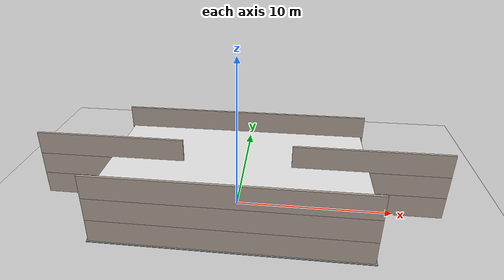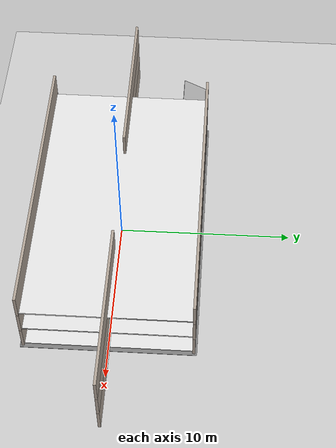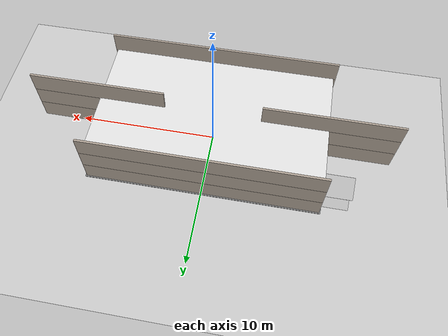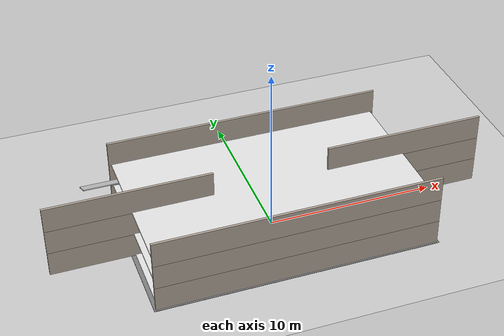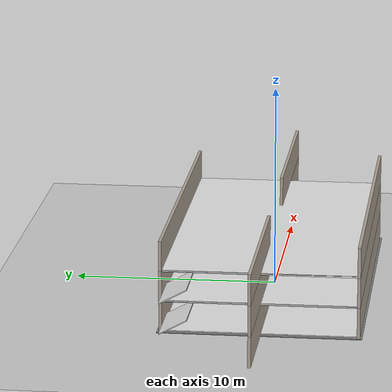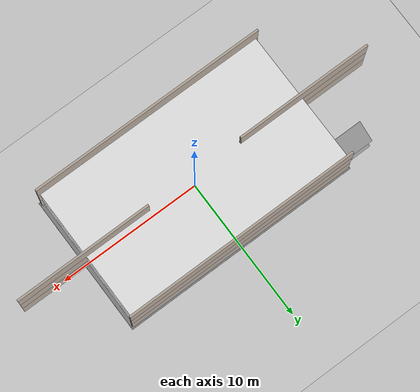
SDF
<?xml version="1.0" ?>
<sdf version="1.5">
    <world name="multi_floor_building">
        <gui fullscreen='false'>
            <camera name='user_camera'>
                <pose>15 -15 12 0 0.4 -1.5</pose>
                <view_controller>orbit</view_controller>
            </camera>
        </gui>
        <physics type="ode">
            <max_step_size>0.001</max_step_size>
            <real_time_factor>1</real_time_factor>
            <real_time_update_rate>1000</real_time_update_rate>
            <gravity>0 0 -9.81</gravity>
            <ode>
                <solver><type>quick</type><iters>50</iters><sor>1.3</sor></solver>
                <constraints><cfm>0.0</cfm><erp>0.2</erp><contact_max_correcting_vel>10.0</contact_max_correcting_vel><contact_surface_layer>0.001</contact_surface_layer></constraints>
            </ode>
        </physics>
        <scene>
            <sky><clouds><speed>12</speed></clouds></sky>
        </scene>
        <include><uri>model://sun</uri></include>
        <include><uri>model://ground_plane</uri></include>
        <include><uri>model://multi_floor_building</uri><pose>0 0 0 0 0 0</pose></include>
    </world>
</sdf>

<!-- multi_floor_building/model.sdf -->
<sdf version='1.7'>
  <model name='MultiFloorBuilding'>
    <static>true</static>
    <allow_auto_disable>1</allow_auto_disable>

    <link name='building_base'>
        <pose>0 0 -0.05 0 0 0</pose>
        <visual name='visual'>
            <geometry>
                <box>
                    <size>16.8 9.8 0.1</size>
                </box>
            </geometry>
            <material>
                <ambient>0.4 0.4 0.4 1</ambient>
                <diffuse>0.5 0.5 0.5 1</diffuse>
            </material>
        </visual>
        <collision name='collision'>
            <geometry>
                <box>
                    <size>16.8 9.8 0.1</size>
                </box>
            </geometry>
        </collision>
    </link>

        <link name='floor_f0'>
            <pose>0 0 0.0 0 0 0</pose>
            <visual name='visual'>
                <geometry>
                    <box>
                        <size>16.3 9.3 0.1</size>
                    </box>
                </geometry>
                <material>
                    <ambient>0.8 0.8 0.8 1</ambient>
                    <diffuse>0.9 0.9 0.9 1</diffuse>
                </material>
            </visual>
            <collision name='collision'>
                <geometry>
                    <box>
                        <size>16.3 9.3 0.1</size>
                    </box>
                </geometry>
                <surface>
                    <friction>
                        <ode>
                            <mu>1.0</mu>
                            <mu2>1.0</mu2>
                        </ode>
                    </friction>
                </surface>
            </collision>
        </link>

        <link name='ext_wall_f0_0'>
            <pose>0 -4.7250000000000005 0.75 0 0 0</pose>
            <visual name='visual'>
                <geometry>
                    <box>
                        <size>16.6 0.15 1.5</size>
                    </box>
                </geometry>
                <material>
                    <ambient>0.6 0.55 0.5 1</ambient>
                    <diffuse>0.7 0.65 0.6 1</diffuse>
                </material>
            </visual>
            <collision name='collision'>
                <geometry>
                    <box>
                        <size>16.6 0.15 1.5</size>
                    </box>
                </geometry>
                <surface>
                    <friction>
                        <ode>
                            <mu>0.8</mu>
                            <mu2>0.8</mu2>
                        </ode>
                    </friction>
                </surface>
            </collision>
        </link>

        <link name='ext_wall_f0_1'>
            <pose>0 4.7250000000000005 0.75 0 0 0</pose>
            <visual name='visual'>
                <geometry>
                    <box>
                        <size>16.6 0.15 1.5</size>
                    </box>
                </geometry>
                <material>
                    <ambient>0.6 0.55 0.5 1</ambient>
                    <diffuse>0.7 0.65 0.6 1</diffuse>
                </material>
            </visual>
            <collision name='collision'>
                <geometry>
                    <box>
                        <size>16.6 0.15 1.5</size>
                    </box>
                </geometry>
                <surface>
                    <friction>
                        <ode>
                            <mu>0.8</mu>
                            <mu2>0.8</mu2>
                        </ode>
                    </friction>
                </surface>
            </collision>
        </link>

        <link name='ext_wall_f0_2'>
            <pose>-8.225 0 0.75 0 0 1.5708</pose>
            <visual name='visual'>
                <geometry>
                    <box>
                        <size>0.15 9.600000000000001 1.5</size>
                    </box>
                </geometry>
                <material>
                    <ambient>0.6 0.55 0.5 1</ambient>
                    <diffuse>0.7 0.65 0.6 1</diffuse>
                </material>
            </visual>
            <collision name='collision'>
                <geometry>
                    <box>
                        <size>0.15 9.600000000000001 1.5</size>
                    </box>
                </geometry>
                <surface>
                    <friction>
                        <ode>
                            <mu>0.8</mu>
                            <mu2>0.8</mu2>
                        </ode>
                    </friction>
                </surface>
            </collision>
        </link>

        <link name='ext_wall_f0_3'>
            <pose>8.225 0 0.75 0 0 1.5708</pose>
            <visual name='visual'>
                <geometry>
                    <box>
                        <size>0.15 9.600000000000001 1.5</size>
                    </box>
                </geometry>
                <material>
                    <ambient>0.6 0.55 0.5 1</ambient>
                    <diffuse>0.7 0.65 0.6 1</diffuse>
                </material>
            </visual>
            <collision name='collision'>
                <geometry>
                    <box>
                        <size>0.15 9.600000000000001 1.5</size>
                    </box>
                </geometry>
                <surface>
                    <friction>
                        <ode>
                            <mu>0.8</mu>
                            <mu2>0.8</mu2>
                        </ode>
                    </friction>
                </surface>
            </collision>
        </link>

        <link name='ceiling_f0'>
            <pose>0 0 1.5 0 0 0</pose>
            <visual name='visual'>
                <geometry>
                    <box>
                        <size>16.3 9.3 0.05</size>
                    </box>
                </geometry>
                <material>
                    <ambient>0.9 0.9 0.9 1</ambient>
                    <diffuse>1.0 1.0 1.0 1</diffuse>
                </material>
            </visual>
            <collision name='collision'>
                <geometry>
                    <box>
                        <size>16.3 9.3 0.05</size>
                    </box>
                </geometry>
            </collision>
        </link>

        <link name='floor_f1'>
            <pose>0 0 1.5 0 0 0</pose>
            <visual name='visual'>
                <geometry>
                    <box>
                        <size>16.3 9.3 0.1</size>
                    </box>
                </geometry>
                <material>
                    <ambient>0.8 0.8 0.8 1</ambient>
                    <diffuse>0.9 0.9 0.9 1</diffuse>
                </material>
            </visual>
            <collision name='collision'>
                <geometry>
                    <box>
                        <size>16.3 9.3 0.1</size>
                    </box>
                </geometry>
                <surface>
                    <friction>
                        <ode>
                            <mu>1.0</mu>
                            <mu2>1.0</mu2>
                        </ode>
                    </friction>
                </surface>
            </collision>
        </link>

        <link name='ext_wall_f1_0'>
            <pose>0 -4.7250000000000005 2.25 0 0 0</pose>
            <visual name='visual'>
                <geometry>
                    <box>
                        <size>16.6 0.15 1.5</size>
                    </box>
                </geometry>
                <material>
                    <ambient>0.6 0.55 0.5 1</ambient>
                    <diffuse>0.7 0.65 0.6 1</diffuse>
                </material>
            </visual>
            <collision name='collision'>
                <geometry>
                    <box>
                        <size>16.6 0.15 1.5</size>
                    </box>
                </geometry>
                <surface>
                    <friction>
                        <ode>
                            <mu>0.8</mu>
                            <mu2>0.8</mu2>
                        </ode>
                    </friction>
                </surface>
            </collision>
        </link>

        <link name='ext_wall_f1_1'>
            <pose>0 4.7250000000000005 2.25 0 0 0</pose>
            <visual name='visual'>
                <geometry>
                    <box>
                        <size>16.6 0.15 1.5</size>
                    </box>
                </geometry>
                <material>
                    <ambient>0.6 0.55 0.5 1</ambient>
                    <diffuse>0.7 0.65 0.6 1</diffuse>
                </material>
            </visual>
            <collision name='collision'>
                <geometry>
                    <box>
                        <size>16.6 0.15 1.5</size>
                    </box>
                </geometry>
                <surface>
                    <friction>
                        <ode>
                            <mu>0.8</mu>
                            <mu2>0.8</mu2>
                        </ode>
                    </friction>
                </surface>
            </collision>
        </link>

        <link name='ext_wall_f1_2'>
            <pose>-8.225 0 2.25 0 0 1.5708</pose>
            <visual name='visual'>
                <geometry>
                    <box>
                        <size>0.15 9.600000000000001 1.5</size>
                    </box>
                </geometry>
                <material>
                    <ambient>0.6 0.55 0.5 1</ambient>
                    <diffuse>0.7 0.65 0.6 1</diffuse>
                </material>
            </visual>
            <collision name='collision'>
                <geometry>
                    <box>
                        <size>0.15 9.600000000000001 1.5</size>
                    </box>
                </geometry>
                <surface>
                    <friction>
                        <ode>
                            <mu>0.8</mu>
                            <mu2>0.8</mu2>
                        </ode>
                    </friction>
                </surface>
            </collision>
        </link>

        <link name='ext_wall_f1_3'>
            <pose>8.225 0 2.25 0 0 1.5708</pose>
            <visual name='visual'>
                <geometry>
                    <box>
                        <size>0.15 9.600000000000001 1.5</size>
                    </box>
                </geometry>
                <material>
                    <ambient>0.6 0.55 0.5 1</ambient>
                    <diffuse>0.7 0.65 0.6 1</diffuse>
                </material>
            </visual>
            <collision name='collision'>
                <geometry>
                    <box>
                        <size>0.15 9.600000000000001 1.5</size>
                    </box>
                </geometry>
                <surface>
                    <friction>
                        <ode>
                            <mu>0.8</mu>
                            <mu2>0.8</mu2>
                        </ode>
                    </friction>
                </surface>
            </collision>
        </link>

        <link name='ceiling_f1'>
            <pose>0 0 3.0 0 0 0</pose>
            <visual name='visual'>
                <geometry>
                    <box>
                        <size>16.3 9.3 0.05</size>
                    </box>
                </geometry>
                <material>
                    <ambient>0.9 0.9 0.9 1</ambient>
                    <diffuse>1.0 1.0 1.0 1</diffuse>
                </material>
            </visual>
            <collision name='collision'>
                <geometry>
                    <box>
                        <size>16.3 9.3 0.05</size>
                    </box>
                </geometry>
            </collision>
        </link>

        <link name='floor_f2'>
            <pose>0 0 3.0 0 0 0</pose>
            <visual name='visual'>
                <geometry>
                    <box>
                        <size>16.3 9.3 0.1</size>
                    </box>
                </geometry>
                <material>
                    <ambient>0.8 0.8 0.8 1</ambient>
                    <diffuse>0.9 0.9 0.9 1</diffuse>
                </material>
            </visual>
            <collision name='collision'>
                <geometry>
                    <box>
                        <size>16.3 9.3 0.1</size>
                    </box>
                </geometry>
                <surface>
                    <friction>
                        <ode>
                            <mu>1.0</mu>
                            <mu2>1.0</mu2>
                        </ode>
                    </friction>
                </surface>
            </collision>
        </link>

        <link name='ext_wall_f2_0'>
            <pose>0 -4.7250000000000005 3.75 0 0 0</pose>
            <visual name='visual'>
                <geometry>
                    <box>
                        <size>16.6 0.15 1.5</size>
                    </box>
                </geometry>
                <material>
                    <ambient>0.6 0.55 0.5 1</ambient>
                    <diffuse>0.7 0.65 0.6 1</diffuse>
                </material>
            </visual>
            <collision name='collision'>
                <geometry>
                    <box>
                        <size>16.6 0.15 1.5</size>
                    </box>
                </geometry>
                <surface>
                    <friction>
                        <ode>
                            <mu>0.8</mu>
                            <mu2>0.8</mu2>
                        </ode>
                    </friction>
                </surface>
            </collision>
        </link>

        <link name='ext_wall_f2_1'>
            <pose>0 4.7250000000000005 3.75 0 0 0</pose>
            <visual name='visual'>
                <geometry>
                    <box>
                        <size>16.6 0.15 1.5</size>
                    </box>
                </geometry>
                <material>
                    <ambient>0.6 0.55 0.5 1</ambient>
                    <diffuse>0.7 0.65 0.6 1</diffuse>
                </material>
            </visual>
            <collision name='collision'>
                <geometry>
                    <box>
                        <size>16.6 0.15 1.5</size>
                    </box>
                </geometry>
                <surface>
                    <friction>
                        <ode>
                            <mu>0.8</mu>
                            <mu2>0.8</mu2>
                        </ode>
                    </friction>
                </surface>
            </collision>
        </link>

        <link name='ext_wall_f2_2'>
            <pose>-8.225 0 3.75 0 0 1.5708</pose>
            <visual name='visual'>
                <geometry>
                    <box>
                        <size>0.15 9.600000000000001 1.5</size>
                    </box>
                </geometry>
                <material>
                    <ambient>0.6 0.55 0.5 1</ambient>
                    <diffuse>0.7 0.65 0.6 1</diffuse>
                </material>
            </visual>
            <collision name='collision'>
                <geometry>
                    <box>
                        <size>0.15 9.600000000000001 1.5</size>
                    </box>
                </geometry>
                <surface>
                    <friction>
                        <ode>
                            <mu>0.8</mu>
                            <mu2>0.8</mu2>
                        </ode>
                    </friction>
                </surface>
            </collision>
        </link>

        <link name='ext_wall_f2_3'>
            <pose>8.225 0 3.75 0 0 1.5708</pose>
            <visual name='visual'>
                <geometry>
                    <box>
                        <size>0.15 9.600000000000001 1.5</size>
                    </box>
                </geometry>
                <material>
                    <ambient>0.6 0.55 0.5 1</ambient>
                    <diffuse>0.7 0.65 0.6 1</diffuse>
                </material>
            </visual>
            <collision name='collision'>
                <geometry>
                    <box>
                        <size>0.15 9.600000000000001 1.5</size>
                    </box>
                </geometry>
                <surface>
                    <friction>
                        <ode>
                            <mu>0.8</mu>
                            <mu2>0.8</mu2>
                        </ode>
                    </friction>
                </surface>
            </collision>
        </link>

        <link name='stair_ramp_f0'>
            <pose>-8.55 3.9000000000000004 0.85 0 0.4918091759886985 1.5708</pose>
            <visual name='visual'>
                <geometry>
                    <box>
                        <size>1.5 3.1764760348537187 0.05</size>
                    </box>
                </geometry>
                <material>
                    <ambient>0.7 0.7 0.7 1</ambient>
                    <diffuse>0.8 0.8 0.8 1</diffuse>
                </material>
            </visual>
            <collision name='collision'>
                <geometry>
                    <box>
                        <size>1.5 3.1764760348537187 0.05</size>
                    </box>
                </geometry>
                <surface>
                    <friction>
                        <ode>
                            <mu>1.5</mu>
                            <mu2>1.5</mu2>
                            <slip1>0</slip1>
                            <slip2>0</slip2>
                        </ode>
                    </friction>
                </surface>
            </collision>
        </link>

        <link name='stair_ramp_f1'>
            <pose>-8.55 3.9000000000000004 2.35 0 0.4918091759886985 1.5708</pose>
            <visual name='visual'>
                <geometry>
                    <box>
                        <size>1.5 3.1764760348537187 0.05</size>
                    </box>
                </geometry>
                <material>
                    <ambient>0.7 0.7 0.7 1</ambient>
                    <diffuse>0.8 0.8 0.8 1</diffuse>
                </material>
            </visual>
            <collision name='collision'>
                <geometry>
                    <box>
                        <size>1.5 3.1764760348537187 0.05</size>
                    </box>
                </geometry>
                <surface>
                    <friction>
                        <ode>
                            <mu>1.5</mu>
                            <mu2>1.5</mu2>
                            <slip1>0</slip1>
                            <slip2>0</slip2>
                        </ode>
                    </friction>
                </surface>
            </collision>
        </link>

  </model>
</sdf>
